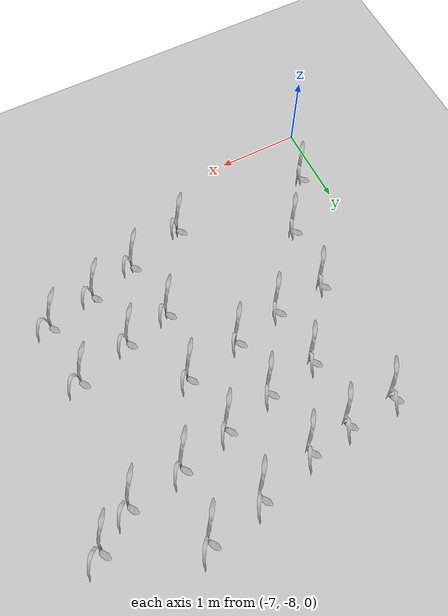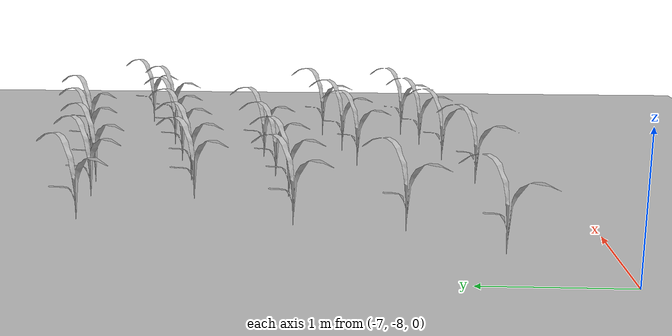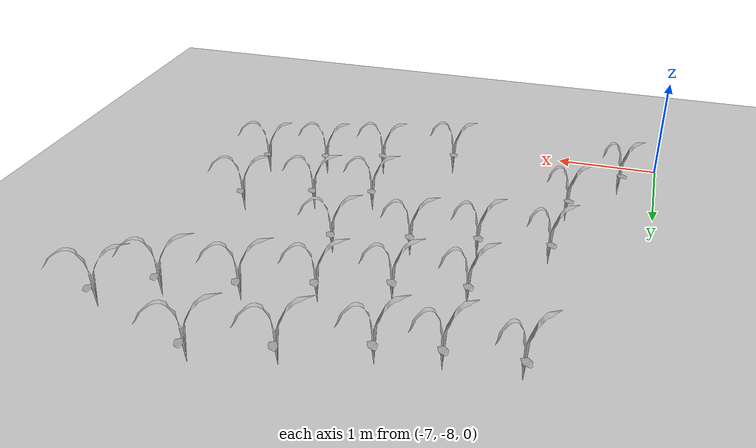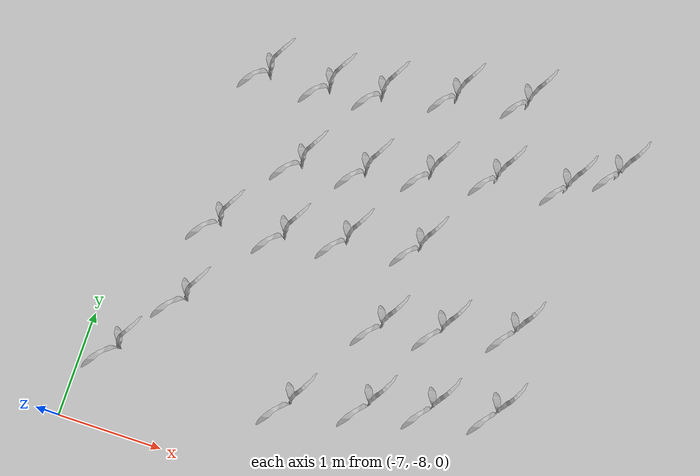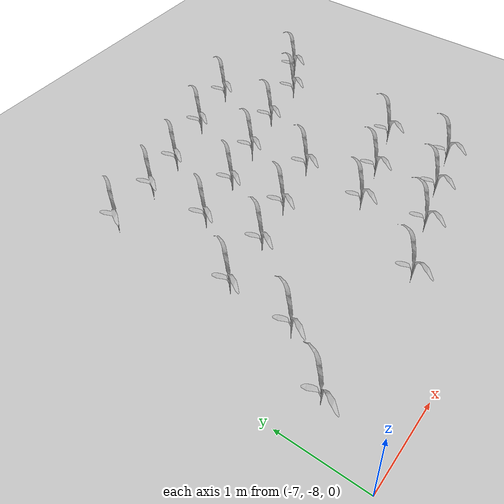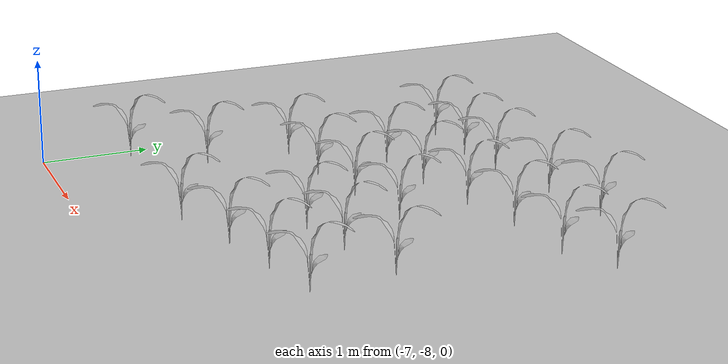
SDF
<sdf version="1.7">
 <world name="default">
  <model name="ground_plane">
   <static>1</static>
   <link name="link">
    <collision name="collision">
     <geometry><plane><normal>0 0 1</normal><size>100 100</size></plane></geometry>
     <surface><friction><ode><mu>100</mu><mu2>50</mu2></ode></friction></surface>
    </collision>
    <visual name="visual">
     <cast_shadows>0</cast_shadows>
     <geometry><plane><normal>0 0 1</normal><size>100 100</size></plane></geometry>
     <material>
      <script><uri>file://media/materials/scripts/gazebo.material</uri><name>Gazebo/Grey</name></script>
     </material>
    </visual>
   </link>
  </model>
  <model name="field_row_full_double">
   <model name="maize_02_clone_105">
    <pose>-1.27071 0.57683 0.000249 0 -0 0</pose>
    <link name="maize_02_link">
     <inertial>
      <pose>0 0 0.01 0 -0 0</pose>
      <mass>0.3</mass>
      <inertia>
       <ixx>0.00334167</ixx>
       <ixy>0</ixy>
       <ixz>0</ixz>
       <iyy>0.00334167</iyy>
       <iyz>0</iyz>
       <izz>1.66667e-05</izz>
      </inertia>
      <pose>0 0 0.1 0 -0 0</pose>
     </inertial>
     <collision name="collision">
      <pose>0 0 0.2 0 -0 0</pose>
      <geometry><box><size>0.02 0.02 0.4</size></box></geometry>
      <surface><friction><ode><mu>10</mu><mu2>10</mu2></ode></friction></surface>
     </collision>
     <visual name="visual">
      <geometry>
       <mesh><uri>model://maize_02/meshes/maize_02.dae</uri><scale>0.683166 0.683166 0.683166</scale></mesh>
      </geometry>
     </visual>
    </link>
   </model>
   <model name="maize_02_clone_106">
    <pose>-0.685713 0.61283 0.000249 0 -0 0</pose>
    <link name="maize_02_link">
     <inertial>
      <pose>0 0 0.01 0 -0 0</pose>
      <mass>0.3</mass>
      <inertia>
       <ixx>0.00334167</ixx>
       <ixy>0</ixy>
       <ixz>0</ixz>
       <iyy>0.00334167</iyy>
       <iyz>0</iyz>
       <izz>1.66667e-05</izz>
      </inertia>
      <pose>0 0 0.1 0 -0 0</pose>
     </inertial>
     <collision name="collision">
      <pose>0 0 0.2 0 -0 0</pose>
      <geometry><box><size>0.02 0.02 0.4</size></box></geometry>
      <surface><friction><ode><mu>10</mu><mu2>10</mu2></ode></friction></surface>
     </collision>
     <visual name="visual">
      <geometry>
       <mesh><uri>model://maize_02/meshes/maize_02.dae</uri><scale>0.683166 0.683166 0.683166</scale></mesh>
      </geometry>
     </visual>
    </link>
   </model>
   <model name="maize_02_clone_107">
    <pose>-0.190713 0.69383 0.000249 0 -0 0</pose>
    <link name="maize_02_link">
     <inertial>
      <pose>0 0 0.01 0 -0 0</pose>
      <mass>0.3</mass>
      <inertia>
       <ixx>0.00334167</ixx>
       <ixy>0</ixy>
       <ixz>0</ixz>
       <iyy>0.00334167</iyy>
       <iyz>0</iyz>
       <izz>1.66667e-05</izz>
      </inertia>
      <pose>0 0 0.1 0 -0 0</pose>
     </inertial>
     <collision name="collision">
      <pose>0 0 0.2 0 -0 0</pose>
      <geometry><box><size>0.02 0.02 0.4</size></box></geometry>
      <surface><friction><ode><mu>10</mu><mu2>10</mu2></ode></friction></surface>
     </collision>
     <visual name="visual">
      <geometry>
       <mesh><uri>model://maize_02/meshes/maize_02.dae</uri><scale>0.683166 0.683166 0.683166</scale></mesh>
      </geometry>
     </visual>
    </link>
   </model>
   <model name="maize_02_clone_108">
    <pose>0.484286 0.89183 0.000249 0 -0 0</pose>
    <link name="maize_02_link">
     <inertial>
      <pose>0 0 0.01 0 -0 0</pose>
      <mass>0.3</mass>
      <inertia>
       <ixx>0.00334167</ixx>
       <ixy>0</ixy>
       <ixz>0</ixz>
       <iyy>0.00334167</iyy>
       <iyz>0</iyz>
       <izz>1.66667e-05</izz>
      </inertia>
      <pose>0 0 0.1 0 -0 0</pose>
     </inertial>
     <collision name="collision">
      <pose>0 0 0.2 0 -0 0</pose>
      <geometry><box><size>0.02 0.02 0.4</size></box></geometry>
      <surface><friction><ode><mu>10</mu><mu2>10</mu2></ode></friction></surface>
     </collision>
     <visual name="visual">
      <geometry>
       <mesh><uri>model://maize_02/meshes/maize_02.dae</uri><scale>0.683166 0.683166 0.683166</scale></mesh>
      </geometry>
     </visual>
    </link>
   </model>
   <model name="maize_02_clone_142">
    <pose>1.01409 -1.26469 0.000249 0 -0 0</pose>
    <link name="maize_02_link">
     <inertial>
      <pose>0 0 0.01 0 -0 0</pose>
      <mass>0.3</mass>
      <inertia>
       <ixx>0.00334167</ixx>
       <ixy>0</ixy>
       <ixz>0</ixz>
       <iyy>0.00334167</iyy>
       <iyz>0</iyz>
       <izz>1.66667e-05</izz>
      </inertia>
      <pose>0 0 0.1 0 -0 0</pose>
     </inertial>
     <collision name="collision">
      <pose>0 0 0.2 0 -0 0</pose>
      <geometry><box><size>0.02 0.02 0.4</size></box></geometry>
      <surface><friction><ode><mu>10</mu><mu2>10</mu2></ode></friction></surface>
     </collision>
     <visual name="visual">
      <geometry>
       <mesh><uri>model://maize_02/meshes/maize_02.dae</uri><scale>0.683166 0.683166 0.683166</scale></mesh>
      </geometry>
     </visual>
    </link>
   </model>
   <model name="maize_02_clone_143">
    <pose>1.65384 -1.07449 0.000249 0 -0 0</pose>
    <link name="maize_02_link">
     <inertial>
      <pose>0 0 0.01 0 -0 0</pose>
      <mass>0.3</mass>
      <inertia>
       <ixx>0.00334167</ixx>
       <ixy>0</ixy>
       <ixz>0</ixz>
       <iyy>0.00334167</iyy>
       <iyz>0</iyz>
       <izz>1.66667e-05</izz>
      </inertia>
      <pose>0 0 0.1 0 -0 0</pose>
     </inertial>
     <collision name="collision">
      <pose>0 0 0.2 0 -0 0</pose>
      <geometry><box><size>0.02 0.02 0.4</size></box></geometry>
      <surface><friction><ode><mu>10</mu><mu2>10</mu2></ode></friction></surface>
     </collision>
     <visual name="visual">
      <geometry>
       <mesh><uri>model://maize_02/meshes/maize_02.dae</uri><scale>0.683166 0.683166 0.683166</scale></mesh>
      </geometry>
     </visual>
    </link>
   </model>
   <model name="maize_02_clone_154">
    <pose>1.0746 0.256896 0.000249 0 -0 0</pose>
    <link name="maize_02_link">
     <inertial>
      <pose>0 0 0.01 0 -0 0</pose>
      <mass>0.3</mass>
      <inertia>
       <ixx>0.00334167</ixx>
       <ixy>0</ixy>
       <ixz>0</ixz>
       <iyy>0.00334167</iyy>
       <iyz>0</iyz>
       <izz>1.66667e-05</izz>
      </inertia>
      <pose>0 0 0.1 0 -0 0</pose>
     </inertial>
     <collision name="collision">
      <pose>0 0 0.2 0 -0 0</pose>
      <geometry><box><size>0.02 0.02 0.4</size></box></geometry>
      <surface><friction><ode><mu>10</mu><mu2>10</mu2></ode></friction></surface>
     </collision>
     <visual name="visual">
      <geometry>
       <mesh><uri>model://maize_02/meshes/maize_02.dae</uri><scale>0.683166 0.683166 0.683166</scale></mesh>
      </geometry>
     </visual>
    </link>
   </model>
   <model name="maize_02_clone_155">
    <pose>1.72301 0.369285 0.000249 0 -0 0</pose>
    <link name="maize_02_link">
     <inertial>
      <pose>0 0 0.01 0 -0 0</pose>
      <mass>0.3</mass>
      <inertia>
       <ixx>0.00334167</ixx>
       <ixy>0</ixy>
       <ixz>0</ixz>
       <iyy>0.00334167</iyy>
       <iyz>0</iyz>
       <izz>1.66667e-05</izz>
      </inertia>
      <pose>0 0 0.1 0 -0 0</pose>
     </inertial>
     <collision name="collision">
      <pose>0 0 0.2 0 -0 0</pose>
      <geometry><box><size>0.02 0.02 0.4</size></box></geometry>
      <surface><friction><ode><mu>10</mu><mu2>10</mu2></ode></friction></surface>
     </collision>
     <visual name="visual">
      <geometry>
       <mesh><uri>model://maize_02/meshes/maize_02.dae</uri><scale>0.683166 0.683166 0.683166</scale></mesh>
      </geometry>
     </visual>
    </link>
   </model>
   <model name="maize_02_clone_156">
    <pose>2.14663 0.645937 0.000249 0 -0 0</pose>
    <link name="maize_02_link">
     <inertial>
      <pose>0 0 0.01 0 -0 0</pose>
      <mass>0.3</mass>
      <inertia>
       <ixx>0.00334167</ixx>
       <ixy>0</ixy>
       <ixz>0</ixz>
       <iyy>0.00334167</iyy>
       <iyz>0</iyz>
       <izz>1.66667e-05</izz>
      </inertia>
      <pose>0 0 0.1 0 -0 0</pose>
     </inertial>
     <collision name="collision">
      <pose>0 0 0.2 0 -0 0</pose>
      <geometry><box><size>0.02 0.02 0.4</size></box></geometry>
      <surface><friction><ode><mu>10</mu><mu2>10</mu2></ode></friction></surface>
     </collision>
     <visual name="visual">
      <geometry>
       <mesh><uri>model://maize_02/meshes/maize_02.dae</uri><scale>0.683166 0.683166 0.683166</scale></mesh>
      </geometry>
     </visual>
    </link>
   </model>
   <model name="maize_02_clone_169">
    <pose>1.14377 1.04362 0.000249 0 -0 0</pose>
    <link name="maize_02_link">
     <inertial>
      <pose>0 0 0.01 0 -0 0</pose>
      <mass>0.3</mass>
      <inertia>
       <ixx>0.00334167</ixx>
       <ixy>0</ixy>
       <ixz>0</ixz>
       <iyy>0.00334167</iyy>
       <iyz>0</iyz>
       <izz>1.66667e-05</izz>
      </inertia>
      <pose>0 0 0.1 0 -0 0</pose>
     </inertial>
     <collision name="collision">
      <pose>0 0 0.2 0 -0 0</pose>
      <geometry><box><size>0.02 0.02 0.4</size></box></geometry>
      <surface><friction><ode><mu>10</mu><mu2>10</mu2></ode></friction></surface>
     </collision>
     <visual name="visual">
      <geometry>
       <mesh><uri>model://maize_02/meshes/maize_02.dae</uri><scale>0.683166 0.683166 0.683166</scale></mesh>
      </geometry>
     </visual>
    </link>
   </model>
   <model name="maize_02_clone_34">
    <pose>-1.75419 -2.32328 0.000249 0 -0 0</pose>
    <link name="maize_02_link">
     <inertial>
      <pose>0 0 0.01 0 -0 0</pose>
      <mass>0.3</mass>
      <inertia>
       <ixx>0.00334167</ixx>
       <ixy>0</ixy>
       <ixz>0</ixz>
       <iyy>0.00334167</iyy>
       <iyz>0</iyz>
       <izz>1.66667e-05</izz>
      </inertia>
      <pose>0 0 0.1 0 -0 0</pose>
     </inertial>
     <collision name="collision">
      <pose>0 0 0.2 0 -0 0</pose>
      <geometry><box><size>0.02 0.02 0.4</size></box></geometry>
      <surface><friction><ode><mu>10</mu><mu2>10</mu2></ode></friction></surface>
     </collision>
     <visual name="visual">
      <geometry>
       <mesh><uri>model://maize_02/meshes/maize_02.dae</uri><scale>0.683166 0.683166 0.683166</scale></mesh>
      </geometry>
     </visual>
    </link>
   </model>
   <model name="maize_02_clone_37">
    <pose>-0.099705 -2.32328 0.000249 0 -0 0</pose>
    <link name="maize_02_link">
     <inertial>
      <pose>0 0 0.01 0 -0 0</pose>
      <mass>0.3</mass>
      <inertia>
       <ixx>0.00334167</ixx>
       <ixy>0</ixy>
       <ixz>0</ixz>
       <iyy>0.00334167</iyy>
       <iyz>0</iyz>
       <izz>1.66667e-05</izz>
      </inertia>
      <pose>0 0 0.1 0 -0 0</pose>
     </inertial>
     <collision name="collision">
      <pose>0 0 0.2 0 -0 0</pose>
      <geometry><box><size>0.02 0.02 0.4</size></box></geometry>
      <surface><friction><ode><mu>10</mu><mu2>10</mu2></ode></friction></surface>
     </collision>
     <visual name="visual">
      <geometry>
       <mesh><uri>model://maize_02/meshes/maize_02.dae</uri><scale>0.683166 0.683166 0.683166</scale></mesh>
      </geometry>
     </visual>
    </link>
   </model>
   <model name="maize_02_clone_71">
    <pose>1.70924 -1.8261 0.000249 0 -0 0</pose>
    <link name="maize_02_link">
     <inertial>
      <pose>0 0 0.01 0 -0 0</pose>
      <mass>0.3</mass>
      <inertia>
       <ixx>0.00334167</ixx>
       <ixy>0</ixy>
       <ixz>0</ixz>
       <iyy>0.00334167</iyy>
       <iyz>0</iyz>
       <izz>1.66667e-05</izz>
      </inertia>
      <pose>0 0 0.1 0 -0 0</pose>
     </inertial>
     <collision name="collision">
      <pose>0 0 0.2 0 -0 0</pose>
      <geometry><box><size>0.02 0.02 0.4</size></box></geometry>
      <surface><friction><ode><mu>10</mu><mu2>10</mu2></ode></friction></surface>
     </collision>
     <visual name="visual">
      <geometry>
       <mesh><uri>model://maize_02/meshes/maize_02.dae</uri><scale>0.683166 0.683166 0.683166</scale></mesh>
      </geometry>
     </visual>
    </link>
   </model>
   <model name="maize_02_clone_72">
    <pose>1.13864 -1.96229 0.000249 0 -0 0</pose>
    <link name="maize_02_link">
     <inertial>
      <pose>0 0 0.01 0 -0 0</pose>
      <mass>0.3</mass>
      <inertia>
       <ixx>0.00334167</ixx>
       <ixy>0</ixy>
       <ixz>0</ixz>
       <iyy>0.00334167</iyy>
       <iyz>0</iyz>
       <izz>1.66667e-05</izz>
      </inertia>
      <pose>0 0 0.1 0 -0 0</pose>
     </inertial>
     <collision name="collision">
      <pose>0 0 0.2 0 -0 0</pose>
      <geometry><box><size>0.02 0.02 0.4</size></box></geometry>
      <surface><friction><ode><mu>10</mu><mu2>10</mu2></ode></friction></surface>
     </collision>
     <visual name="visual">
      <geometry>
       <mesh><uri>model://maize_02/meshes/maize_02.dae</uri><scale>0.683166 0.683166 0.683166</scale></mesh>
      </geometry>
     </visual>
    </link>
   </model>
   <model name="maize_02_clone_73">
    <pose>0.58513 -2.11716 0.000249 0 -0 0</pose>
    <link name="maize_02_link">
     <inertial>
      <pose>0 0 0.01 0 -0 0</pose>
      <mass>0.3</mass>
      <inertia>
       <ixx>0.00334167</ixx>
       <ixy>0</ixy>
       <ixz>0</ixz>
       <iyy>0.00334167</iyy>
       <iyz>0</iyz>
       <izz>1.66667e-05</izz>
      </inertia>
      <pose>0 0 0.1 0 -0 0</pose>
     </inertial>
     <collision name="collision">
      <pose>0 0 0.2 0 -0 0</pose>
      <geometry><box><size>0.02 0.02 0.4</size></box></geometry>
      <surface><friction><ode><mu>10</mu><mu2>10</mu2></ode></friction></surface>
     </collision>
     <visual name="visual">
      <geometry>
       <mesh><uri>model://maize_02/meshes/maize_02.dae</uri><scale>0.683166 0.683166 0.683166</scale></mesh>
      </geometry>
     </visual>
    </link>
   </model>
   <model name="maize_02_clone_79">
    <pose>-1.31571 -1.70917 0.000249 0 -0 0</pose>
    <link name="maize_02_link">
     <inertial>
      <pose>0 0 0.01 0 -0 0</pose>
      <mass>0.3</mass>
      <inertia>
       <ixx>0.00334167</ixx>
       <ixy>0</ixy>
       <ixz>0</ixz>
       <iyy>0.00334167</iyy>
       <iyz>0</iyz>
       <izz>1.66667e-05</izz>
      </inertia>
      <pose>0 0 0.1 0 -0 0</pose>
     </inertial>
     <collision name="collision">
      <pose>0 0 0.2 0 -0 0</pose>
      <geometry><box><size>0.02 0.02 0.4</size></box></geometry>
      <surface><friction><ode><mu>10</mu><mu2>10</mu2></ode></friction></surface>
     </collision>
     <visual name="visual">
      <geometry>
       <mesh><uri>model://maize_02/meshes/maize_02.dae</uri><scale>0.683166 0.683166 0.683166</scale></mesh>
      </geometry>
     </visual>
    </link>
   </model>
   <model name="maize_02_clone_80">
    <pose>0.475285 -1.39417 0.000249 0 -0 0</pose>
    <link name="maize_02_link">
     <inertial>
      <pose>0 0 0.01 0 -0 0</pose>
      <mass>0.3</mass>
      <inertia>
       <ixx>0.00334167</ixx>
       <ixy>0</ixy>
       <ixz>0</ixz>
       <iyy>0.00334167</iyy>
       <iyz>0</iyz>
       <izz>1.66667e-05</izz>
      </inertia>
      <pose>0 0 0.1 0 -0 0</pose>
     </inertial>
     <collision name="collision">
      <pose>0 0 0.2 0 -0 0</pose>
      <geometry><box><size>0.02 0.02 0.4</size></box></geometry>
      <surface><friction><ode><mu>10</mu><mu2>10</mu2></ode></friction></surface>
     </collision>
     <visual name="visual">
      <geometry>
       <mesh><uri>model://maize_02/meshes/maize_02.dae</uri><scale>0.683166 0.683166 0.683166</scale></mesh>
      </geometry>
     </visual>
    </link>
   </model>
   <model name="maize_02_clone_86">
    <pose>-1.25271 -0.935169 0.000249 0 -0 0</pose>
    <link name="maize_02_link">
     <inertial>
      <pose>0 0 0.01 0 -0 0</pose>
      <mass>0.3</mass>
      <inertia>
       <ixx>0.00334167</ixx>
       <ixy>0</ixy>
       <ixz>0</ixz>
       <iyy>0.00334167</iyy>
       <iyz>0</iyz>
       <izz>1.66667e-05</izz>
      </inertia>
      <pose>0 0 0.1 0 -0 0</pose>
     </inertial>
     <collision name="collision">
      <pose>0 0 0.2 0 -0 0</pose>
      <geometry><box><size>0.02 0.02 0.4</size></box></geometry>
      <surface><friction><ode><mu>10</mu><mu2>10</mu2></ode></friction></surface>
     </collision>
     <visual name="visual">
      <geometry>
       <mesh><uri>model://maize_02/meshes/maize_02.dae</uri><scale>0.683166 0.683166 0.683166</scale></mesh>
      </geometry>
     </visual>
    </link>
   </model>
   <model name="maize_02_clone_87">
    <pose>-0.640714 -0.872169 0.000249 0 -0 0</pose>
    <link name="maize_02_link">
     <inertial>
      <pose>0 0 0.01 0 -0 0</pose>
      <mass>0.3</mass>
      <inertia>
       <ixx>0.00334167</ixx>
       <ixy>0</ixy>
       <ixz>0</ixz>
       <iyy>0.00334167</iyy>
       <iyz>0</iyz>
       <izz>1.66667e-05</izz>
      </inertia>
      <pose>0 0 0.1 0 -0 0</pose>
     </inertial>
     <collision name="collision">
      <pose>0 0 0.2 0 -0 0</pose>
      <geometry><box><size>0.02 0.02 0.4</size></box></geometry>
      <surface><friction><ode><mu>10</mu><mu2>10</mu2></ode></friction></surface>
     </collision>
     <visual name="visual">
      <geometry>
       <mesh><uri>model://maize_02/meshes/maize_02.dae</uri><scale>0.683166 0.683166 0.683166</scale></mesh>
      </geometry>
     </visual>
    </link>
   </model>
   <model name="maize_02_clone_88">
    <pose>-0.073714 -0.737169 0.000249 0 -0 0</pose>
    <link name="maize_02_link">
     <inertial>
      <pose>0 0 0.01 0 -0 0</pose>
      <mass>0.3</mass>
      <inertia>
       <ixx>0.00334167</ixx>
       <ixy>0</ixy>
       <ixz>0</ixz>
       <iyy>0.00334167</iyy>
       <iyz>0</iyz>
       <izz>1.66667e-05</izz>
      </inertia>
      <pose>0 0 0.1 0 -0 0</pose>
     </inertial>
     <collision name="collision">
      <pose>0 0 0.2 0 -0 0</pose>
      <geometry><box><size>0.02 0.02 0.4</size></box></geometry>
      <surface><friction><ode><mu>10</mu><mu2>10</mu2></ode></friction></surface>
     </collision>
     <visual name="visual">
      <geometry>
       <mesh><uri>model://maize_02/meshes/maize_02.dae</uri><scale>0.683166 0.683166 0.683166</scale></mesh>
      </geometry>
     </visual>
    </link>
   </model>
   <model name="maize_02_clone_89">
    <pose>0.592286 -0.59317 0.000249 0 -0 0</pose>
    <link name="maize_02_link">
     <inertial>
      <pose>0 0 0.01 0 -0 0</pose>
      <mass>0.3</mass>
      <inertia>
       <ixx>0.00334167</ixx>
       <ixy>0</ixy>
       <ixz>0</ixz>
       <iyy>0.00334167</iyy>
       <iyz>0</iyz>
       <izz>1.66667e-05</izz>
      </inertia>
      <pose>0 0 0.1 0 -0 0</pose>
     </inertial>
     <collision name="collision">
      <pose>0 0 0.2 0 -0 0</pose>
      <geometry><box><size>0.02 0.02 0.4</size></box></geometry>
      <surface><friction><ode><mu>10</mu><mu2>10</mu2></ode></friction></surface>
     </collision>
     <visual name="visual">
      <geometry>
       <mesh><uri>model://maize_02/meshes/maize_02.dae</uri><scale>0.683166 0.683166 0.683166</scale></mesh>
      </geometry>
     </visual>
    </link>
   </model>
   <model name="maize_02_clone_90">
    <pose>0.475286 0.09983 0.000249 0 -0 0</pose>
    <link name="maize_02_link">
     <inertial>
      <pose>0 0 0.01 0 -0 0</pose>
      <mass>0.3</mass>
      <inertia>
       <ixx>0.00334167</ixx>
       <ixy>0</ixy>
       <ixz>0</ixz>
       <iyy>0.00334167</iyy>
       <iyz>0</iyz>
       <izz>1.66667e-05</izz>
      </inertia>
      <pose>0 0 0.1 0 -0 0</pose>
     </inertial>
     <collision name="collision">
      <pose>0 0 0.2 0 -0 0</pose>
      <geometry><box><size>0.02 0.02 0.4</size></box></geometry>
      <surface><friction><ode><mu>10</mu><mu2>10</mu2></ode></friction></surface>
     </collision>
     <visual name="visual">
      <geometry>
       <mesh><uri>model://maize_02/meshes/maize_02.dae</uri><scale>0.683166 0.683166 0.683166</scale></mesh>
      </geometry>
     </visual>
    </link>
   </model>
   <model name="maize_02_clone_91">
    <pose>-0.109714 -0.06217 0.000249 0 -0 0</pose>
    <link name="maize_02_link">
     <inertial>
      <pose>0 0 0.01 0 -0 0</pose>
      <mass>0.3</mass>
      <inertia>
       <ixx>0.00334167</ixx>
       <ixy>0</ixy>
       <ixz>0</ixz>
       <iyy>0.00334167</iyy>
       <iyz>0</iyz>
       <izz>1.66667e-05</izz>
      </inertia>
      <pose>0 0 0.1 0 -0 0</pose>
     </inertial>
     <collision name="collision">
      <pose>0 0 0.2 0 -0 0</pose>
      <geometry><box><size>0.02 0.02 0.4</size></box></geometry>
      <surface><friction><ode><mu>10</mu><mu2>10</mu2></ode></friction></surface>
     </collision>
     <visual name="visual">
      <geometry>
       <mesh><uri>model://maize_02/meshes/maize_02.dae</uri><scale>0.683166 0.683166 0.683166</scale></mesh>
      </geometry>
     </visual>
    </link>
   </model>
   <model name="maize_02_clone_92">
    <pose>-0.703714 -0.170169 0.000249 0 -0 0</pose>
    <link name="maize_02_link">
     <inertial>
      <pose>0 0 0.01 0 -0 0</pose>
      <mass>0.3</mass>
      <inertia>
       <ixx>0.00334167</ixx>
       <ixy>0</ixy>
       <ixz>0</ixz>
       <iyy>0.00334167</iyy>
       <iyz>0</iyz>
       <izz>1.66667e-05</izz>
      </inertia>
      <pose>0 0 0.1 0 -0 0</pose>
     </inertial>
     <collision name="collision">
      <pose>0 0 0.2 0 -0 0</pose>
      <geometry><box><size>0.02 0.02 0.4</size></box></geometry>
      <surface><friction><ode><mu>10</mu><mu2>10</mu2></ode></friction></surface>
     </collision>
     <visual name="visual">
      <geometry>
       <mesh><uri>model://maize_02/meshes/maize_02.dae</uri><scale>0.683166 0.683166 0.683166</scale></mesh>
      </geometry>
     </visual>
    </link>
   </model>
   <static>0</static>
   <pose>-4.88086 -4.92393 0.082016 2e-06 -0 -0.000304</pose>
  </model>
 </world>
</sdf>
